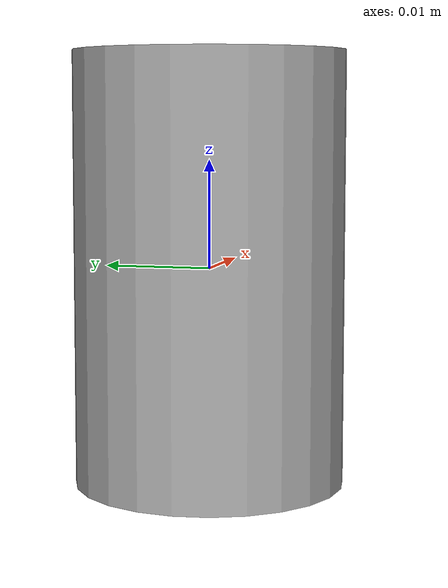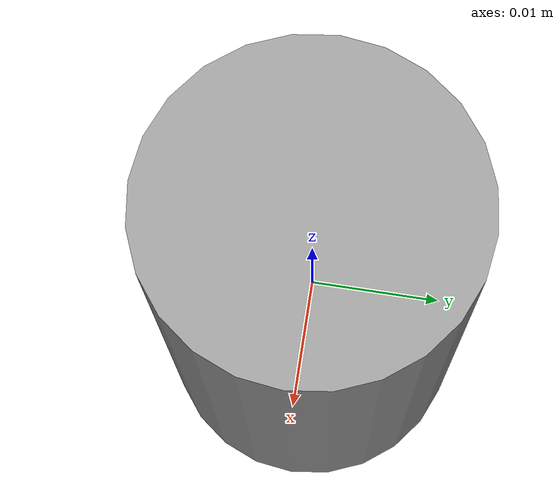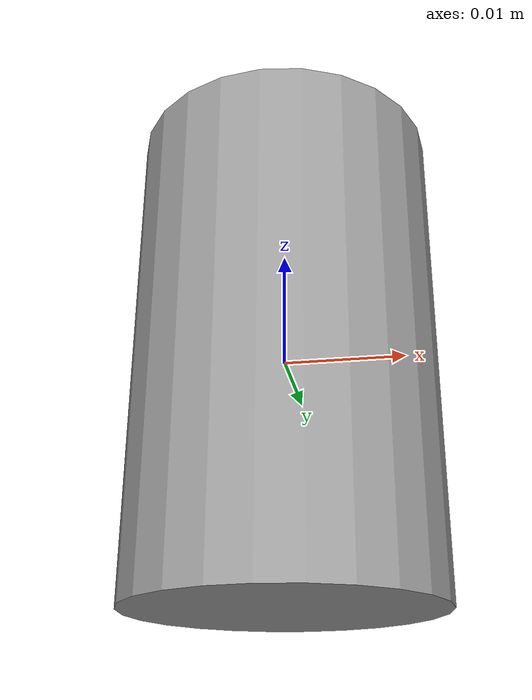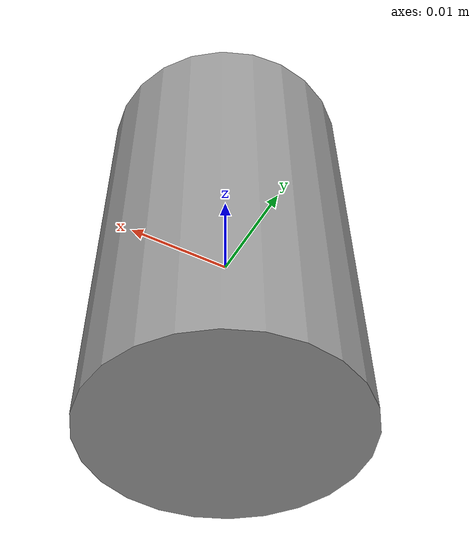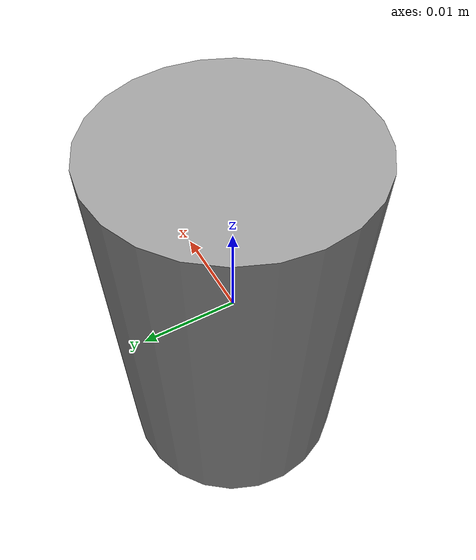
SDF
<?xml version='1.0'?>
<sdf version='1.6'>
  <model name='simple_pawn_white'>
    <link name='link_0'>
      <inertial>
        <mass>0.015</mass>
        <inertia>
          <ixx>5.34e-06</ixx>
          <ixy>0</ixy>
          <ixz>0</ixz>
          <iyy>5.34e-06</iyy>
          <iyz>0</iyz>
          <izz>1.69e-06</izz>
        </inertia>
        <pose frame=''>0 0 0 0 -0 0</pose>
      </inertial>
      <pose frame=''>0 0 0 0 -0 0</pose>
      <gravity>1</gravity>
      <self_collide>0</self_collide>
      <kinematic>0</kinematic>
      <enable_wind>0</enable_wind>
      <visual name='visual'>
        <pose frame=''>0 0 0 0 -0 0</pose>
        <geometry>
          <cylinder>
            <radius>0.0125</radius>
            <length>0.04</length>
          </cylinder>
        </geometry>
        <material>
          <lighting>1</lighting>
          <script>
            <uri>file://media/materials/scripts/gazebo.material</uri>
            <name>Gazebo/Grey</name>
          </script>
          <shader type='vertex'>
            <normal_map>__default__</normal_map>
          </shader>
          <ambient>1 1 1 1</ambient>
          <diffuse>1 1 1 1</diffuse>
          <specular>1 1 1 1</specular>
          <emissive>0 0 0 1</emissive>
        </material>
        <transparency>0</transparency>
        <cast_shadows>1</cast_shadows>
      </visual>
      <collision name='collision'>
        <laser_retro>0</laser_retro>
        <max_contacts>10</max_contacts>
        <pose frame=''>0 0 0 0 -0 0</pose>
        <geometry>
          <cylinder>
            <radius>0.0125</radius>
            <length>0.04</length>
          </cylinder>
        </geometry>
        <surface>
          <friction>
            <ode>
              <mu>1</mu>
              <mu2>1</mu2>
              <fdir1>0 0 0</fdir1>
              <slip1>0</slip1>
              <slip2>0</slip2>
            </ode>
            <torsional>
              <coefficient>1</coefficient>
              <patch_radius>0</patch_radius>
              <surface_radius>0.01</surface_radius> <!-- era 0 -->
              <use_patch_radius>0</use_patch_radius> <!-- era 1 -->
              <ode>
                <slip>0</slip>
              </ode>
            </torsional>
          </friction>
          <bounce>
            <restitution_coefficient>0</restitution_coefficient>
            <threshold>1e+06</threshold>
          </bounce>
          <contact>
            <poissons_ratio>0.35</poissons_ratio> <!-- non c'era -->
            <elastic_modulus>3.102640776e+09</elastic_modulus> <!-- non c'era -->
            <collide_without_contact>0</collide_without_contact>
            <collide_without_contact_bitmask>1</collide_without_contact_bitmask>
            <collide_bitmask>1</collide_bitmask>
            <ode>
              <soft_cfm>0</soft_cfm>
              <soft_erp>0.2</soft_erp>
              <kp>100000</kp> <!-- era 1e+13 -->
              <kd>100</kd> <!-- era 1 -->
              <max_vel>100.0</max_vel> <!-- era 0.01 -->
              <min_depth>0.001</min_depth> <!-- era 0 -->
            </ode>
            <bullet>
              <split_impulse>1</split_impulse>
              <split_impulse_penetration_threshold>-0.01</split_impulse_penetration_threshold>
              <soft_cfm>0</soft_cfm>
              <soft_erp>0.2</soft_erp>
              <kp>1e+13</kp>
              <kd>1</kd>
            </bullet>
          </contact>
        </surface>
      </collision>
    </link>
    <static>0</static>
    <allow_auto_disable>1</allow_auto_disable>
  </model>
</sdf>
